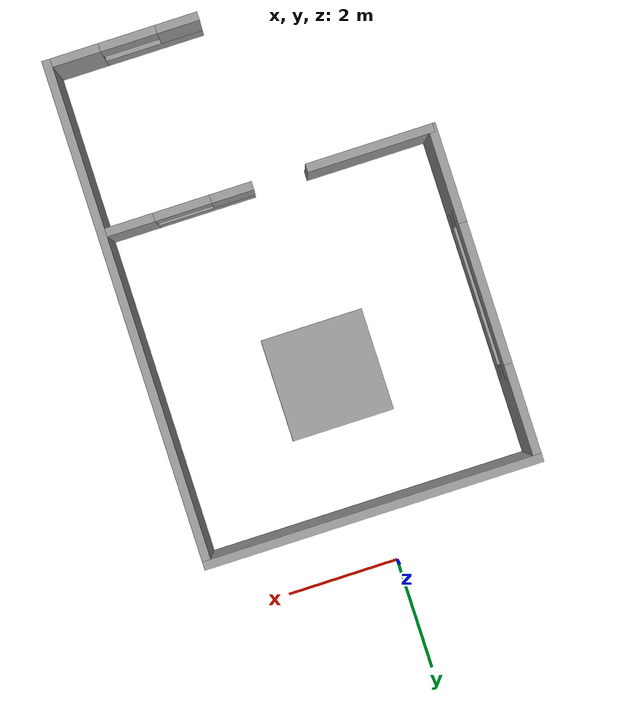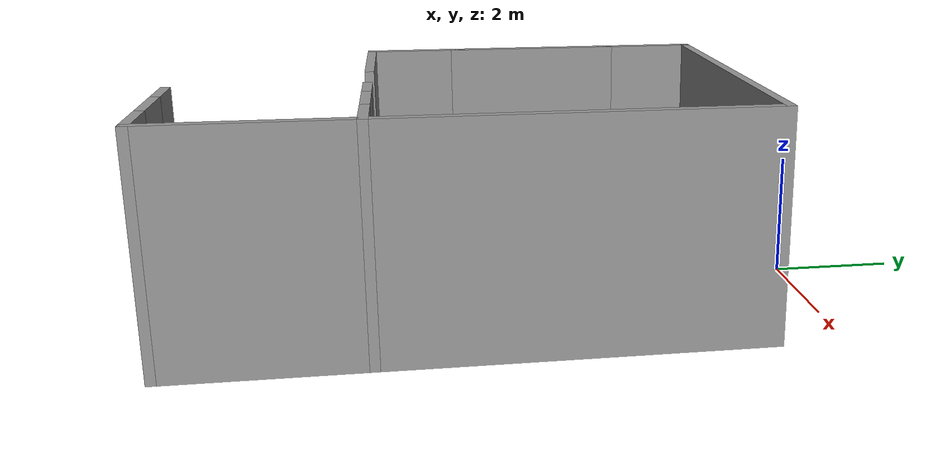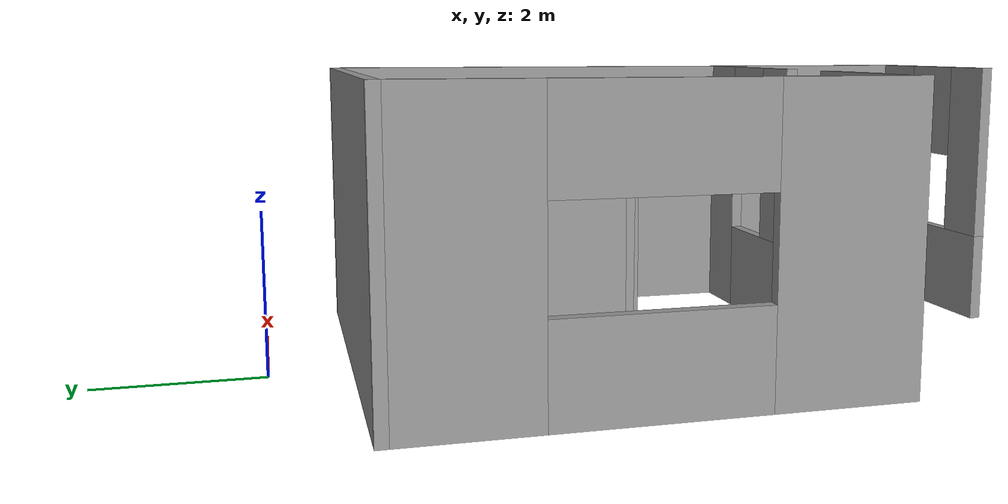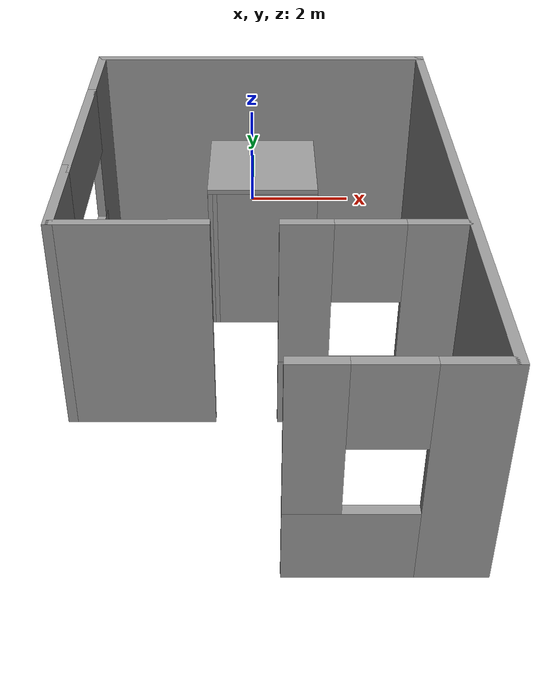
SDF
<?xml version='1.0'?>
<sdf version='1.6'>
  <model name='hfr_mwc'>
    <pose frame=''>0.175 -3.995 0 0 -0 0</pose>
    <link name='Wall_0'>
      <collision name='Wall_0_Collision'>
        <geometry>
          <box>
            <size>6 0.15 3.6</size>
          </box>
        </geometry>
        <pose frame=''>0 0 1.8 0 -0 0</pose>
      </collision>
      <visual name='Wall_0_Visual'>
        <pose frame=''>0 0 1.8 0 -0 0</pose>
        <geometry>
          <box>
            <size>6 0.15 3.6</size>
          </box>
        </geometry>
        <material>
          <script>
            <uri>file://media/materials/scripts/gazebo.material</uri>
            <name>Gazebo/Grey</name>
          </script>
          <ambient>1 1 1 1</ambient>
        </material>
        <meta>
          <layer>0</layer>
        </meta>
      </visual>
      <pose frame=''>-0 2.925 0 0 -0 0</pose>
    </link>
    <link name='Wall_1'>
      <collision name='Wall_1_Collision'>
        <geometry>
          <box>
            <size>9 0.15 3.6</size>
          </box>
        </geometry>
        <pose frame=''>0 0 1.8 0 -0 0</pose>
      </collision>
      <visual name='Wall_1_Visual'>
        <pose frame=''>0 0 1.8 0 -0 0</pose>
        <geometry>
          <box>
            <size>9 0.15 3.6</size>
          </box>
        </geometry>
        <material>
          <script>
            <uri>file://media/materials/scripts/gazebo.material</uri>
            <name>Gazebo/Grey</name>
          </script>
          <ambient>1 1 1 1</ambient>
        </material>
        <meta>
          <layer>0</layer>
        </meta>
      </visual>
      <pose frame=''>2.925 -1.5 0 0 -0 -1.5708</pose>
    </link>
    <link name='Wall_11'>
      <collision name='Wall_11_Collision'>
        <geometry>
          <box>
            <size>1.75 0.15 3.6</size>
          </box>
        </geometry>
        <pose frame=''>0 0 1.8 0 -0 0</pose>
      </collision>
      <visual name='Wall_11_Visual'>
        <pose frame=''>0 0 1.8 0 -0 0</pose>
        <geometry>
          <box>
            <size>1.75 0.15 3.6</size>
          </box>
        </geometry>
        <material>
          <script>
            <uri>file://media/materials/scripts/gazebo.material</uri>
            <name>Gazebo/Grey</name>
          </script>
          <ambient>1 1 1 1</ambient>
        </material>
        <meta>
          <layer>0</layer>
        </meta>
      </visual>
      <pose frame=''>-2.925 2.125 0 0 -0 -1.5708</pose>
    </link>
    <link name='Wall_13'>
      <collision name='Wall_13_Collision'>
        <geometry>
          <box>
            <size>2.25 0.15 3.6</size>
          </box>
        </geometry>
        <pose frame=''>0 0 1.8 0 -0 0</pose>
      </collision>
      <visual name='Wall_13_Visual'>
        <pose frame=''>0 0 1.8 0 -0 0</pose>
        <geometry>
          <box>
            <size>2.25 0.15 3.6</size>
          </box>
        </geometry>
        <material>
          <script>
            <uri>file://media/materials/scripts/gazebo.material</uri>
            <name>Gazebo/Grey</name>
          </script>
          <ambient>1 1 1 1</ambient>
        </material>
        <meta>
          <layer>0</layer>
        </meta>
      </visual>
      <pose frame=''>-1.825 -2.925 0 0 -0 3.14159</pose>
    </link>
    <link name='Wall_14'>
      <collision name='Wall_14_Collision'>
        <geometry>
          <box>
            <size>1.75 0.15 3.6</size>
          </box>
        </geometry>
        <pose frame=''>0 0 1.8 0 -0 0</pose>
      </collision>
      <visual name='Wall_14_Visual'>
        <pose frame=''>0 0 1.8 0 -0 0</pose>
        <geometry>
          <box>
            <size>1.75 0.15 3.6</size>
          </box>
        </geometry>
        <material>
          <script>
            <uri>file://media/materials/scripts/gazebo.material</uri>
            <name>Gazebo/Grey</name>
          </script>
          <ambient>1 1 1 1</ambient>
        </material>
        <meta>
          <layer>0</layer>
        </meta>
      </visual>
      <pose frame=''>-2.925 -2.125 0 0 -0 1.5708</pose>
    </link>
    <link name='Wall_2'>
      <pose frame=''>1.625 -2.925 0 0 -0 3.14159</pose>
      <visual name='Wall_2_Visual_0'>
        <pose frame=''>-0.87626 0 1.8 0 -0 0</pose>
        <geometry>
          <box>
            <size>0.997481 0.15 3.6</size>
          </box>
        </geometry>
        <material>
          <script>
            <uri>file://media/materials/scripts/gazebo.material</uri>
            <name>Gazebo/Grey</name>
          </script>
          <ambient>1 1 1 1</ambient>
        </material>
        <meta>
          <layer>0</layer>
        </meta>
      </visual>
      <collision name='Wall_2_Collision_0'>
        <geometry>
          <box>
            <size>0.997481 0.15 3.6</size>
          </box>
        </geometry>
        <pose frame=''>-0.87626 0 1.8 0 -0 0</pose>
      </collision>
      <visual name='Wall_2_Visual_1'>
        <pose frame=''>0.49874 0 0.6 0 -0 0</pose>
        <geometry>
          <box>
            <size>1.75252 0.15 1.2</size>
          </box>
        </geometry>
        <material>
          <script>
            <uri>file://media/materials/scripts/gazebo.material</uri>
            <name>Gazebo/Grey</name>
          </script>
          <ambient>1 1 1 1</ambient>
        </material>
        <meta>
          <layer>0</layer>
        </meta>
      </visual>
      <collision name='Wall_2_Collision_1'>
        <geometry>
          <box>
            <size>1.75252 0.15 1.2</size>
          </box>
        </geometry>
        <pose frame=''>0.49874 0 0.6 0 -0 0</pose>
      </collision>
      <visual name='Wall_2_Visual_2'>
        <pose frame=''>0.99874 0 2.4 0 -0 0</pose>
        <geometry>
          <box>
            <size>0.752519 0.15 2.4</size>
          </box>
        </geometry>
        <material>
          <script>
            <uri>file://media/materials/scripts/gazebo.material</uri>
            <name>Gazebo/Grey</name>
          </script>
          <ambient>1 1 1 1</ambient>
        </material>
        <meta>
          <layer>0</layer>
        </meta>
      </visual>
      <collision name='Wall_2_Collision_2'>
        <geometry>
          <box>
            <size>0.752519 0.15 2.4</size>
          </box>
        </geometry>
        <pose frame=''>0.99874 0 2.4 0 -0 0</pose>
      </collision>
      <visual name='Wall_2_Visual_3'>
        <pose frame=''>0.122481 0 2.95 0 -0 0</pose>
        <geometry>
          <box>
            <size>1 0.15 1.3</size>
          </box>
        </geometry>
        <material>
          <script>
            <uri>file://media/materials/scripts/gazebo.material</uri>
            <name>Gazebo/Grey</name>
          </script>
          <ambient>1 1 1 1</ambient>
        </material>
        <meta>
          <layer>0</layer>
        </meta>
      </visual>
      <collision name='Wall_2_Collision_3'>
        <geometry>
          <box>
            <size>1 0.15 1.3</size>
          </box>
        </geometry>
        <pose frame=''>0.122481 0 2.95 0 -0 0</pose>
      </collision>
    </link>
    <link name='RWall_2'>
      <pose frame=''>1.625 -5.925 0 0 -0 3.14159</pose>
      <visual name='Wall_2_Visual_0'>
        <pose frame=''>-0.87626 0 1.8 0 -0 0</pose>
        <geometry>
          <box>
            <size>0.997481 0.15 3.6</size>
          </box>
        </geometry>
        <material>
          <script>
            <uri>file://media/materials/scripts/gazebo.material</uri>
            <name>Gazebo/Grey</name>
          </script>
          <ambient>1 1 1 1</ambient>
        </material>
        <meta>
          <layer>0</layer>
        </meta>
      </visual>
      <collision name='Wall_2_Collision_0'>
        <geometry>
          <box>
            <size>0.997481 0.15 3.6</size>
          </box>
        </geometry>
        <pose frame=''>-0.87626 0 1.8 0 -0 0</pose>
      </collision>
      <visual name='Wall_2_Visual_1'>
        <pose frame=''>0.49874 0 0.6 0 -0 0</pose>
        <geometry>
          <box>
            <size>1.75252 0.15 1.2</size>
          </box>
        </geometry>
        <material>
          <script>
            <uri>file://media/materials/scripts/gazebo.material</uri>
            <name>Gazebo/Grey</name>
          </script>
          <ambient>1 1 1 1</ambient>
        </material>
        <meta>
          <layer>0</layer>
        </meta>
      </visual>
      <collision name='Wall_2_Collision_1'>
        <geometry>
          <box>
            <size>1.75252 0.15 1.2</size>
          </box>
        </geometry>
        <pose frame=''>0.49874 0 0.6 0 -0 0</pose>
      </collision>
      <visual name='Wall_2_Visual_2'>
        <pose frame=''>0.99874 0 2.4 0 -0 0</pose>
        <geometry>
          <box>
            <size>0.752519 0.15 2.4</size>
          </box>
        </geometry>
        <material>
          <script>
            <uri>file://media/materials/scripts/gazebo.material</uri>
            <name>Gazebo/Grey</name>
          </script>
          <ambient>1 1 1 1</ambient>
        </material>
        <meta>
          <layer>0</layer>
        </meta>
      </visual>
      <collision name='Wall_2_Collision_2'>
        <geometry>
          <box>
            <size>0.752519 0.15 2.4</size>
          </box>
        </geometry>
        <pose frame=''>0.99874 0 2.4 0 -0 0</pose>
      </collision>
      <visual name='Wall_2_Visual_3'>
        <pose frame=''>0.122481 0 2.95 0 -0 0</pose>
        <geometry>
          <box>
            <size>1 0.15 1.3</size>
          </box>
        </geometry>
        <material>
          <script>
            <uri>file://media/materials/scripts/gazebo.material</uri>
            <name>Gazebo/Grey</name>
          </script>
          <ambient>1 1 1 1</ambient>
        </material>
        <meta>
          <layer>0</layer>
        </meta>
      </visual>
      <collision name='Wall_2_Collision_3'>
        <geometry>
          <box>
            <size>1 0.15 1.3</size>
          </box>
        </geometry>
        <pose frame=''>0.122481 0 2.95 0 -0 0</pose>
      </collision>
    </link>
    <link name='Wall_22'>
      <collision name='Wall_22_Collision'>
        <geometry>
          <box>
            <size>1.8 0.15 2.6</size>
          </box>
        </geometry>
        <pose frame=''>0 0 1.3 0 -0 0</pose>
      </collision>
      <visual name='Wall_22_Visual'>
        <pose frame=''>0 0 1.3 0 -0 0</pose>
        <geometry>
          <box>
            <size>1.8 0.15 2.6</size>
          </box>
        </geometry>
        <material>
          <script>
            <uri>file://media/materials/scripts/gazebo.material</uri>
            <name>Gazebo/Grey</name>
          </script>
          <ambient>1 1 1 1</ambient>
        </material>
        <meta>
          <layer>0</layer>
        </meta>
      </visual>
      <pose frame=''>0.029143 1.325 0 0 -0 0</pose>
    </link>
    <link name='Wall_25'>
      <collision name='Wall_25_Collision'>
        <geometry>
          <box>
            <size>1.8 0.15 2.6</size>
          </box>
        </geometry>
        <pose frame=''>0 0 1.3 0 -0 0</pose>
      </collision>
      <visual name='Wall_25_Visual'>
        <pose frame=''>0 0 1.3 0 -0 0</pose>
        <geometry>
          <box>
            <size>1.8 0.15 2.6</size>
          </box>
        </geometry>
        <material>
          <script>
            <uri>file://media/materials/scripts/gazebo.material</uri>
            <name>Gazebo/Grey</name>
          </script>
          <ambient>1 1 1 1</ambient>
        </material>
        <meta>
          <layer>0</layer>
        </meta>
      </visual>
      <pose frame=''>-0.795928 0.5 0 0 -0 -1.57088</pose>
    </link>
    <link name='Wall_26'>
      <collision name='Wall_26_Collision'>
        <geometry>
          <box>
            <size>1.8 0.15 2.6</size>
          </box>
        </geometry>
        <pose frame=''>0 0 1.3 0 -0 0</pose>
      </collision>
      <visual name='Wall_26_Visual'>
        <pose frame=''>0 0 1.3 0 -0 0</pose>
        <geometry>
          <box>
            <size>1.8 0.15 2.6</size>
          </box>
        </geometry>
        <material>
          <script>
            <uri>file://media/materials/scripts/gazebo.material</uri>
            <name>Gazebo/Grey</name>
          </script>
          <ambient>1 1 1 1</ambient>
        </material>
        <meta>
          <layer>0</layer>
        </meta>
      </visual>
      <pose frame=''>0.029 -0.325 0 0 -0 0</pose>
    </link>
    <link name='Wall_28'>
      <collision name='Wall_28_Collision'>
        <geometry>
          <box>
            <size>1.5 0.15 2.6</size>
          </box>
        </geometry>
        <pose frame=''>0.4 0 1.3 0 -0 0</pose>
      </collision>
      <visual name='Wall_28_Visual'>
        <pose frame=''>0.4 0 1.3 0 -0 0</pose>
        <geometry>
          <box>
            <size>1.5 0.15 2.6</size>
          </box>
        </geometry>
        <material>
          <script>
            <uri>file://media/materials/scripts/gazebo.material</uri>
            <name>Gazebo/Grey</name>
          </script>
          <ambient>1 1 1 1</ambient>
        </material>
        <meta>
          <layer>0</layer>
        </meta>
      </visual>
      <pose frame=''>0.854143 0.9 0 0 -0 -1.5708</pose>
    </link>
    <link name='roof'>
      <collision name='coll'>
        <geometry>
          <box>
            <size>1.8 1.8 0.15</size>
          </box>
        </geometry>
        <pose frame=''>0.0 0 2.6 0 -0 0</pose>
      </collision>
      <visual name='vis'>
        <pose frame=''>0.0 0 2.6 0 -0 0</pose>
        <geometry>
          <box>
            <size>1.8 1.8 0.15</size>
          </box>
        </geometry>
        <material>
          <script>
            <uri>file://media/materials/scripts/gazebo.material</uri>
            <name>Gazebo/Grey</name>
          </script>
          <ambient>1 1 1 1</ambient>
        </material>
        <meta>
          <layer>0</layer>
        </meta>
      </visual>
      <pose frame=''>0.025 0.5 0 0 0 0</pose>
    </link>
    <link name="window1">
      <visual name='vis0'>
        <pose frame=''>-2.925 0 0.6 0 -0 0</pose>
        <geometry>
          <box>
            <size>0.15 3.0 1.2</size>
          </box>
        </geometry>
        <material>
          <script>
            <uri>file://media/materials/scripts/gazebo.material</uri>
            <name>Gazebo/Grey</name>
          </script>
          <ambient>1 1 1 1</ambient>
        </material>
        <meta>
          <layer>0</layer>
        </meta>
      </visual>
      <collision name='collision_0'>
        <geometry>
          <box>
            <size>0.15 3.0 1.2</size>
          </box>
        </geometry>
        <pose frame=''>-2.925 0 0.6 0 -0 0</pose>
      </collision>
    </link>
    <link name="window2">
      <visual name='vis0'>
        <pose frame=''>-2.925 0 3.0 0 -0 0</pose>
        <geometry>
          <box>
            <size>0.15 3.0 1.2</size>
          </box>
        </geometry>
        <material>
          <script>
            <uri>file://media/materials/scripts/gazebo.material</uri>
            <name>Gazebo/Grey</name>
          </script>
          <ambient>1 1 1 1</ambient>
        </material>
        <meta>
          <layer>0</layer>
        </meta>
      </visual>
      <collision name='collision_0'>
        <geometry>
          <box>
            <size>0.15 3.0 1.2</size>
          </box>
        </geometry>
        <pose frame=''>-2.925 0 3.0 0 -0 0</pose>
      </collision>
    </link>
    <static>1</static>
  </model>
</sdf>
